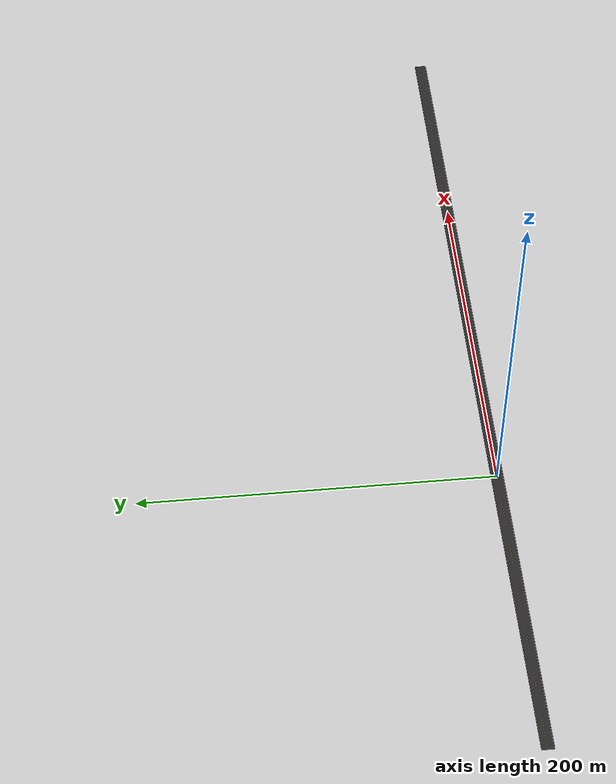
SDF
<?xml version="1.0"?>
<sdf version="1.6"><world name="default">
  <gravity>0 0 -9.8</gravity>
  <physics name="ode" type="ode"><max_step_size>0.004</max_step_size><real_time_update_rate>250</real_time_update_rate><real_time_factor>1</real_time_factor></physics>
  <scene><ambient>0.42 0.42 0.42 1</ambient><background>0.82 0.86 0.90 1</background><shadows>true</shadows></scene>
  <light name="sun" type="directional"><cast_shadows>true</cast_shadows><pose>0 0 20 0 0 0</pose><diffuse>1 0.97 0.90 1</diffuse><specular>0.35 0.35 0.32 1</specular><direction>0.58 0.08 -0.81</direction></light>
  <include><uri>model://ground_plane</uri></include>
  <plugin name="wind_plugin" filename="libgazebo_wind_plugin.so">
    <frameId>base_link</frameId><robotNamespace/>
    <windVelocityMean>5.0</windVelocityMean><windVelocityMax>5.8</windVelocityMax><windVelocityVariance>0.16</windVelocityVariance>
    <windDirectionMean>0 1 0</windDirectionMean><windDirectionVariance>0.0064</windDirectionVariance>
    <windGustStart>70</windGustStart><windGustDuration>25</windGustDuration>
    <windGustVelocityMean>0.8</windGustVelocityMean><windGustVelocityMax>0.8</windGustVelocityMax><windGustVelocityVariance>0</windGustVelocityVariance>
    <windGustDirectionMean>0 1 0</windGustDirectionMean><windGustDirectionVariance>0</windGustDirectionVariance><windPubTopic>world_wind</windPubTopic>
  </plugin>
  <model name="main_road"><static>true</static><pose>80 0 0.025 0 0 0</pose><link name="road">
    <collision name="collision"><geometry><box><size>140 7 0.05</size></box></geometry></collision>
    <visual name="asphalt"><geometry><box><size>500 7 0.05</size></box></geometry><material><ambient>0.12 0.12 0.12 1</ambient><diffuse>0.16 0.16 0.16 1</diffuse></material></visual>
    <visual name="center_line"><pose>0 0 0.031 0 0 0</pose><geometry><box><size>500 0.10 0.012</size></box></geometry><material><ambient>0.95 0.80 0.08 1</ambient><diffuse>1 0.85 0.10 1</diffuse></material></visual>
    <visual name="left_edge_line"><pose>0 3.25 0.031 0 0 0</pose><geometry><box><size>500 0.10 0.012</size></box></geometry><material><ambient>0.9 0.9 0.9 1</ambient><diffuse>1 1 1 1</diffuse></material></visual>
    <visual name="right_edge_line"><pose>0 -3.25 0.031 0 0 0</pose><geometry><box><size>500 0.10 0.012</size></box></geometry><material><ambient>0.9 0.9 0.9 1</ambient><diffuse>1 1 1 1</diffuse></material></visual>
  </link></model>
  <gui fullscreen="0"><camera name="user_camera"><pose>10 -7 5.5 0 0.48 1.57</pose><view_controller>orbit</view_controller></camera></gui>
</world></sdf>
